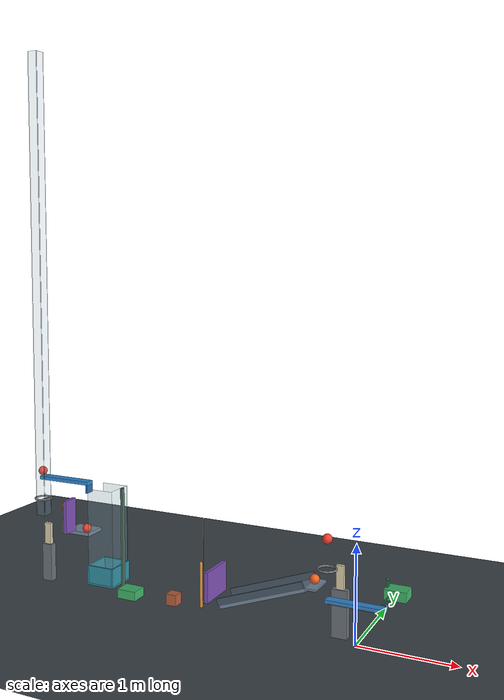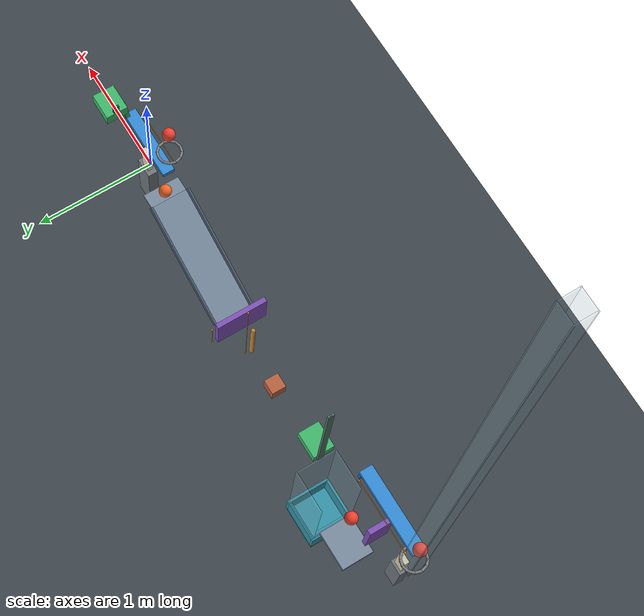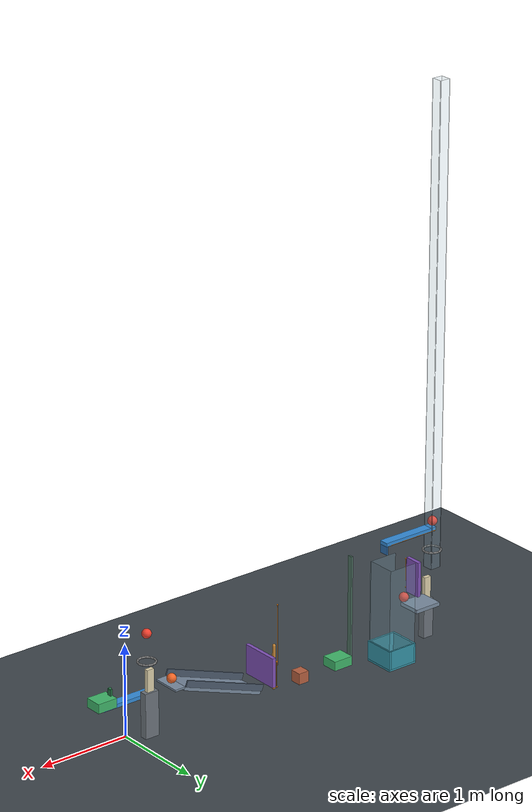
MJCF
<mujoco model="revised_chain_plinth_clearance">
  <compiler angle="degree" autolimits="true"/>
  <option timestep="0.002" gravity="0 0 -9.81" integrator="implicitfast" cone="elliptic" solver="Newton" iterations="100" tolerance="1e-10"/>

  <visual>
    <headlight ambient="0.35 0.35 0.35" diffuse="0.65 0.65 0.65" specular="0.15 0.15 0.15"/>
    <map znear="0.01" zfar="30"/>
  </visual>

  <!-- Passive over-center spring assists; every body initially at rest. -->
  <!-- Contact damping ratio 0.7156 approximates restitution 0.04. -->
  <!-- This revision has not been simulation-verified. -->
  <!-- Primary hinge damping is 0.04; slide damping is 0.20. -->

  <worldbody>
    <light name="scene_light" pos="-1.5 -3 7" dir="0 0.3 -1" diffuse="0.8 0.8 0.8"/>
    <camera name="overview" pos="-1.8 -6 3.8" xyaxes="1 0 0 0 0.48 0.877268"/>
    <geom name="floor" type="plane" pos="0 0 0" size="10 5 0.1" friction="0.72 0.005 0.0001" condim="6" solref="0.004 0.7156" rgba="0.24 0.27 0.30 1"/>

    <!-- Extra rolling resistance arrests ball1 after its intended strike. -->
    <body name="ball1" pos="-0.285 -0.025 1.022020">
      <freejoint name="ball1_free"/>
      <geom name="ball1_sphere" type="sphere" size="0.05" mass="0.20" friction="0.72 0.005 0.005" condim="6" solref="0.004 0.7156" rgba="0.95 0.25 0.18 1"/>
    </body>

    <!-- Ring1 is 0.30 m below ball1's initial center. -->
    <!-- Capsule polygon has a 0.16 m minimum clear diameter. -->
    <body name="ring1" pos="-0.285 -0.025 0.722020">
      <geom name="ring1_segment00" type="capsule" fromto="0.093174856 0 0 0.080691024 0.046587428 0" size="0.01" friction="0.72 0.005 0.0001" solref="0.004 0.7156"/>
      <geom name="ring1_segment01" type="capsule" fromto="0.080691024 0.046587428 0 0.046587428 0.080691024 0" size="0.01" friction="0.72 0.005 0.0001" solref="0.004 0.7156"/>
      <geom name="ring1_segment02" type="capsule" fromto="0.046587428 0.080691024 0 0 0.093174856 0" size="0.01" friction="0.72 0.005 0.0001" solref="0.004 0.7156"/>
      <geom name="ring1_segment03" type="capsule" fromto="0 0.093174856 0 -0.046587428 0.080691024 0" size="0.01" friction="0.72 0.005 0.0001" solref="0.004 0.7156"/>
      <geom name="ring1_segment04" type="capsule" fromto="-0.046587428 0.080691024 0 -0.080691024 0.046587428 0" size="0.01" friction="0.72 0.005 0.0001" solref="0.004 0.7156"/>
      <geom name="ring1_segment05" type="capsule" fromto="-0.080691024 0.046587428 0 -0.093174856 0 0" size="0.01" friction="0.72 0.005 0.0001" solref="0.004 0.7156"/>
      <geom name="ring1_segment06" type="capsule" fromto="-0.093174856 0 0 -0.080691024 -0.046587428 0" size="0.01" friction="0.72 0.005 0.0001" solref="0.004 0.7156"/>
      <geom name="ring1_segment07" type="capsule" fromto="-0.080691024 -0.046587428 0 -0.046587428 -0.080691024 0" size="0.01" friction="0.72 0.005 0.0001" solref="0.004 0.7156"/>
      <geom name="ring1_segment08" type="capsule" fromto="-0.046587428 -0.080691024 0 0 -0.093174856 0" size="0.01" friction="0.72 0.005 0.0001" solref="0.004 0.7156"/>
      <geom name="ring1_segment09" type="capsule" fromto="0 -0.093174856 0 0.046587428 -0.080691024 0" size="0.01" friction="0.72 0.005 0.0001" solref="0.004 0.7156"/>
      <geom name="ring1_segment10" type="capsule" fromto="0.046587428 -0.080691024 0 0.080691024 -0.046587428 0" size="0.01" friction="0.72 0.005 0.0001" solref="0.004 0.7156"/>
      <geom name="ring1_segment11" type="capsule" fromto="0.080691024 -0.046587428 0 0.093174856 0 0" size="0.01" friction="0.72 0.005 0.0001" solref="0.004 0.7156"/>
    </body>

    <!-- Initial ball1 contact center z=0.472020 is 0.25 m below ring1. -->
    <body name="lever1" pos="0 0 0.402020">
      <joint name="lever1_hinge" type="hinge" axis="0 -1 0" damping="0.04" limited="true" range="0 45" solreflimit="0.004 1" solimplimit="0.99 0.999 0.0001"/>
      <geom name="lever1_beam" type="box" size="0.30 0.05 0.02" mass="0.50" contype="2" conaffinity="1" friction="0.72 0.005 0.0001" condim="6" solref="0.004 0.7156" rgba="0.20 0.55 0.85 1"/>
      <geom name="lever1_cam_striker" type="sphere" pos="0.29 0.042 0.03" size="0.014" mass="0" contype="8" conaffinity="16" friction="0.72 0.005 0.0001" condim="3" solref="0.004 0.7156" rgba="0.18 0.40 0.62 1"/>
      <site name="lever1_spring_tip" pos="-0.25 -0.08 0" size="0.006" rgba="1 0.55 0.1 1"/>
    </body>

    <!-- The inclined cam avoids a self-locking underside contact. -->
    <!-- The high striker reaches domino1 after 0.42 m of cart travel. -->
    <body name="cart1" pos="0.37 0.125 0.542020">
      <joint name="cart1_slide" type="slide" axis="-1 0 0" damping="0.20" limited="true" range="0 0.46" solreflimit="0.004 1" solimplimit="0.99 0.999 0.0001"/>
      <geom name="cart1_box" type="box" size="0.11 0.09 0.05" mass="0.50" contype="4" conaffinity="1" friction="0.72 0.005 0.0001" condim="6" solref="0.004 0.7156" rgba="0.25 0.72 0.42 1"/>
      <geom name="cart1_cam" type="box" pos="-0.08 -0.083 -0.042020" quat="0.894427191 0 -0.447213595 0" size="0.065 0.018 0.008" mass="0" contype="16" conaffinity="8" friction="0.72 0.005 0.0001" condim="3" solref="0.004 0.7156" rgba="0.15 0.45 0.27 1"/>
      <geom name="cart1_striker_stem" type="box" pos="-0.095 0 0.0775" size="0.01 0.025 0.0425" mass="0" contype="4" conaffinity="1" friction="0.72 0.005 0.0001" condim="6" solref="0.004 0.7156" rgba="0.15 0.45 0.27 1"/>
      <geom name="cart1_high_striker" type="sphere" pos="-0.095 0 0.12" size="0.015" mass="0" friction="0.72 0.005 0.0001" condim="6" solref="0.004 0.7156" rgba="0.15 0.45 0.27 1"/>
    </body>

    <!-- Plinth top z=0.487020 gives 5 mm clearance below cart1's box. -->
    <body name="domino1_plinth" pos="-0.20 0.125 0.243510">
      <geom name="domino1_plinth_box" type="box" size="0.08 0.04 0.243510" friction="0.72 0.005 0.0001" condim="6" solref="0.004 0.7156" rgba="0.43 0.46 0.49 1"/>
    </body>

    <!-- Bit 128 excludes the cart's low box but allows its high striker. -->
    <body name="domino1" pos="-0.20 0.125 0.607020">
      <freejoint name="domino1_free"/>
      <geom name="domino1_box" type="box" size="0.04 0.02 0.12" mass="0.25" contype="128" conaffinity="1" friction="0.72 0.005 0.0001" condim="6" solref="0.004 0.7156" rgba="0.88 0.83 0.68 1"/>
    </body>

    <!-- Initial domino1-to-ball2 surface gap is 0.18 m. -->
    <body name="ball2" pos="-0.47 0.125 0.542020">
      <freejoint name="ball2_free"/>
      <geom name="ball2_sphere" type="sphere" size="0.05" mass="0.20" friction="0.72 0.005 0.0001" condim="6" solref="0.004 0.7156" rgba="0.95 0.40 0.15 1"/>
    </body>

    <!-- Sloping top: 1.00 m long, 0.30 m wide, inclined 20 degrees. -->
    <!-- Low top endpoint is approximately (-1.459693, 0.125, 0.15). -->
    <body name="ramp1" pos="-0.989846 0.125 0.321010">
      <geom name="ramp1_slope" type="box" pos="0.006840 0 -0.018794" quat="0.984807753 0 -0.173648178 0" size="0.50 0.15 0.02" friction="0.72 0.005 0.0001" condim="6" solref="0.004 0.7156" rgba="0.48 0.55 0.63 1"/>
      <geom name="ramp1_entry_pad" type="box" pos="0.529846 0 0.161010" size="0.06 0.15 0.01" friction="0.72 0.005 0.0001" condim="6" solref="0.004 0.7156" rgba="0.48 0.55 0.63 1"/>
      <geom name="ramp1_rail_north" type="box" pos="-0.011971 0.158 0.032889" quat="0.984807753 0 -0.173648178 0" size="0.50 0.008 0.035" friction="0.72 0.005 0.0001" condim="6" solref="0.004 0.7156" rgba="0.30 0.36 0.43 1"/>
      <geom name="ramp1_rail_south" type="box" pos="-0.011971 -0.158 0.032889" quat="0.984807753 0 -0.173648178 0" size="0.50 0.008 0.035" friction="0.72 0.005 0.0001" condim="6" solref="0.004 0.7156" rgba="0.30 0.36 0.43 1"/>
    </body>

    <!-- Incoming door face is 0.10 m beyond the ramp endpoint. -->
    <body name="door1" pos="-1.579693 0.125 0.33">
      <joint name="door1_hinge" type="hinge" axis="0 1 0" damping="0.04" limited="true" range="0 70" solreflimit="0.004 1" solimplimit="0.99 0.999 0.0001"/>
      <geom name="door1_panel" type="box" size="0.02 0.21 0.16" mass="0.45" friction="0.72 0.005 0.0001" condim="6" solref="0.004 0.7156" rgba="0.50 0.32 0.72 1"/>
      <site name="door1_spring_tip" pos="0 0.25 -0.14" size="0.006" rgba="1 0.55 0.1 1"/>
    </body>

    <body name="pendulum1" pos="-1.747 0.125 0.515">
      <joint name="pendulum1_hinge" type="hinge" axis="0 1 0" damping="0.04" limited="true" range="0 38" solreflimit="0.004 1" solimplimit="0.99 0.999 0.0001"/>
      <geom name="pendulum1_rod" type="capsule" fromto="0 0 -0.018 0 0 -0.482" size="0.018" mass="0.35" friction="0.72 0.005 0.0001" condim="6" solref="0.004 0.7156" rgba="0.78 0.53 0.22 1"/>
      <site name="pendulum1_spring_tip" pos="0 0.055 -0.45" size="0.006" rgba="1 0.55 0.1 1"/>
    </body>

    <!-- Carriage prevents pitching but permits vertical settling onto the floor. -->
    <body name="block1_carriage" pos="-2.083 0.125 0.06">
      <inertial pos="0 0 0" mass="0.001" diaginertia="0.000001 0.000001 0.000001"/>
      <joint name="block1_carriage_slide" type="slide" axis="-1 0 0" damping="0.20"/>
      <joint name="block1_carriage_settle" type="slide" axis="0 0 1" damping="0.20" limited="true" range="-0.003 0.003"/>
    </body>

    <body name="block1" pos="-2.083 0.125 0.06">
      <freejoint name="block1_free"/>
      <geom name="block1_cube" type="box" size="0.06 0.06 0.06" mass="0.35" friction="0.72 0.005 0.0001" condim="6" solref="0.004 0.7156" rgba="0.72 0.38 0.25 1"/>
    </body>

    <!-- Block1 reaches cart2 after sliding 0.35 m. -->
    <!-- The lateral offset keeps cart2 clear of cup1. -->
    <body name="cart2" pos="-2.603 0.085 0.051">
      <joint name="cart2_slide" type="slide" axis="-1 0 0" damping="0.20" limited="true" range="0 0.47" solreflimit="0.004 1" solimplimit="0.99 0.999 0.0001"/>
      <geom name="cart2_box" type="box" size="0.11 0.09 0.05" mass="0.50" friction="0.72 0.005 0.0001" condim="6" solref="0.004 0.7156" rgba="0.25 0.72 0.42 1"/>
      <geom name="cart2_striker_mast" type="box" pos="-0.12 0.04 0.57" size="0.01 0.025 0.57" mass="0" friction="0.72 0.005 0.0001" condim="6" solref="0.004 0.7156" rgba="0.30 0.44 0.38 1"/>
      <geom name="cart2_striker_head" type="sphere" pos="-0.12 0.04 1.135" size="0.01" mass="0" friction="0.72 0.005 0.0001" condim="6" solref="0.004 0.7156" rgba="0.30 0.44 0.38 1"/>
    </body>

    <!-- Working left end is toward +x; ball-carrying right end is toward -x. -->
    <!-- Cart2 reaches the left-end flange after 0.42 m. -->
    <body name="seesaw1" pos="-3.478 0.125 1.20">
      <joint name="seesaw1_hinge" type="hinge" axis="0 1 0" damping="0.04" limited="true" range="0 42" solreflimit="0.004 1" solimplimit="0.99 0.999 0.0001"/>
      <geom name="seesaw1_beam" type="box" size="0.325 0.05 0.02" mass="0.55" friction="0.72 0.005 0.0001" condim="6" solref="0.004 0.7156" rgba="0.20 0.55 0.85 1"/>
      <geom name="seesaw1_trigger_flange" type="box" pos="0.315 0 -0.065" size="0.01 0.05 0.045" mass="0" friction="0.72 0.005 0.0001" condim="6" solref="0.004 0.7156" rgba="0.17 0.43 0.68 1"/>
      <site name="seesaw1_spring_tip" pos="0.28 0.08 0" size="0.006" rgba="1 0.55 0.1 1"/>
    </body>

    <body name="ball3" pos="-3.798 0.125 1.27">
      <freejoint name="ball3_free"/>
      <geom name="ball3_sphere" type="sphere" size="0.05" mass="0.20" contype="32" conaffinity="1" friction="0.72 0.005 0.0001" condim="6" solref="0.004 0.7156" rgba="0.95 0.25 0.18 1"/>
    </body>

    <!-- These guides collide only with ball3. -->
    <!-- Their lower ends terminate at z=0.76, above the domino strike. -->
    <body name="ball3_vertical_guide" pos="-3.798 0.125 3.36">
      <geom name="ball3_vertical_guide_east" type="box" pos="0.056 0 0" size="0.003 0.06 2.60" contype="64" conaffinity="32" friction="0.72 0.005 0.0001" condim="6" solref="0.004 0.7156" rgba="0.60 0.78 0.85 0.18"/>
      <geom name="ball3_vertical_guide_west" type="box" pos="-0.056 0 0" size="0.003 0.06 2.60" contype="64" conaffinity="32" friction="0.72 0.005 0.0001" condim="6" solref="0.004 0.7156" rgba="0.60 0.78 0.85 0.18"/>
      <geom name="ball3_vertical_guide_north" type="box" pos="0 0.056 0" size="0.06 0.003 2.60" contype="64" conaffinity="32" friction="0.72 0.005 0.0001" condim="6" solref="0.004 0.7156" rgba="0.60 0.78 0.85 0.18"/>
      <geom name="ball3_vertical_guide_south" type="box" pos="0 -0.056 0" size="0.06 0.003 2.60" contype="64" conaffinity="32" friction="0.72 0.005 0.0001" condim="6" solref="0.004 0.7156" rgba="0.60 0.78 0.85 0.18"/>
    </body>

    <!-- Ring2 center is 0.32 m below ball3's initial center. -->
    <body name="ring2" pos="-3.798 0.125 0.95">
      <geom name="ring2_segment00" type="capsule" fromto="0.093174856 0 0 0.080691024 0.046587428 0" size="0.01" friction="0.72 0.005 0.0001" solref="0.004 0.7156"/>
      <geom name="ring2_segment01" type="capsule" fromto="0.080691024 0.046587428 0 0.046587428 0.080691024 0" size="0.01" friction="0.72 0.005 0.0001" solref="0.004 0.7156"/>
      <geom name="ring2_segment02" type="capsule" fromto="0.046587428 0.080691024 0 0 0.093174856 0" size="0.01" friction="0.72 0.005 0.0001" solref="0.004 0.7156"/>
      <geom name="ring2_segment03" type="capsule" fromto="0 0.093174856 0 -0.046587428 0.080691024 0" size="0.01" friction="0.72 0.005 0.0001" solref="0.004 0.7156"/>
      <geom name="ring2_segment04" type="capsule" fromto="-0.046587428 0.080691024 0 -0.080691024 0.046587428 0" size="0.01" friction="0.72 0.005 0.0001" solref="0.004 0.7156"/>
      <geom name="ring2_segment05" type="capsule" fromto="-0.080691024 0.046587428 0 -0.093174856 0 0" size="0.01" friction="0.72 0.005 0.0001" solref="0.004 0.7156"/>
      <geom name="ring2_segment06" type="capsule" fromto="-0.093174856 0 0 -0.080691024 -0.046587428 0" size="0.01" friction="0.72 0.005 0.0001" solref="0.004 0.7156"/>
      <geom name="ring2_segment07" type="capsule" fromto="-0.080691024 -0.046587428 0 -0.046587428 -0.080691024 0" size="0.01" friction="0.72 0.005 0.0001" solref="0.004 0.7156"/>
      <geom name="ring2_segment08" type="capsule" fromto="-0.046587428 -0.080691024 0 0 -0.093174856 0" size="0.01" friction="0.72 0.005 0.0001" solref="0.004 0.7156"/>
      <geom name="ring2_segment09" type="capsule" fromto="0 -0.093174856 0 0.046587428 -0.080691024 0" size="0.01" friction="0.72 0.005 0.0001" solref="0.004 0.7156"/>
      <geom name="ring2_segment10" type="capsule" fromto="0.046587428 -0.080691024 0 0.080691024 -0.046587428 0" size="0.01" friction="0.72 0.005 0.0001" solref="0.004 0.7156"/>
      <geom name="ring2_segment11" type="capsule" fromto="0.080691024 -0.046587428 0 0.093174856 0 0" size="0.01" friction="0.72 0.005 0.0001" solref="0.004 0.7156"/>
    </body>

    <!-- Ball3 strikes outside the upper-left corner to push domino2 rightward. -->
    <!-- At first geometric contact its center is z=0.71, 0.24 m below ring2. -->
    <body name="domino2_plinth" pos="-3.733 0.125 0.213349365">
      <geom name="domino2_plinth_box" type="box" size="0.06 0.04 0.213349365" friction="0.72 0.005 0.0001" condim="6" solref="0.004 0.7156" rgba="0.43 0.46 0.49 1"/>
    </body>

    <body name="domino2" pos="-3.733 0.125 0.546698730">
      <freejoint name="domino2_free"/>
      <geom name="domino2_box" type="box" size="0.04 0.02 0.12" mass="0.25" friction="0.72 0.005 0.0001" condim="6" solref="0.004 0.7156" rgba="0.88 0.83 0.68 1"/>
    </body>

    <!-- Initial domino2-to-flap1 surface gap is 0.18 m. -->
    <body name="flap1" pos="-3.493 0.20 0.76">
      <joint name="flap1_hinge" type="hinge" axis="0 -1 0" damping="0.04" limited="true" range="0 60" solreflimit="0.004 1" solimplimit="0.99 0.999 0.0001"/>
      <geom name="flap1_panel" type="box" size="0.02 0.09 0.19" mass="0.28" friction="0.72 0.005 0.0001" condim="6" solref="0.004 0.7156" rgba="0.50 0.32 0.72 1"/>
      <site name="flap1_spring_tip" pos="0 -0.12 -0.16" size="0.006" rgba="1 0.55 0.1 1"/>
    </body>

    <!-- Shelf top z=0.57 is 0.55 m above the cup's inner bottom z=0.02. -->
    <body name="shelf1" pos="-3.424 0.385 0.55">
      <geom name="shelf1_box" type="box" size="0.15 0.125 0.02" friction="0.72 0.005 0.0001" condim="6" solref="0.004 0.7156" rgba="0.48 0.55 0.63 1"/>
    </body>

    <body name="ball4" pos="-3.304 0.275 0.62">
      <freejoint name="ball4_free"/>
      <geom name="ball4_sphere" type="sphere" size="0.05" mass="0.20" friction="0.72 0.005 0.0001" condim="6" solref="0.004 0.7156" rgba="0.95 0.25 0.18 1"/>
    </body>

    <!-- Separate chute is open toward -x at shelf height. -->
    <body name="catch_chute" pos="-3.079 0.36 0">
      <geom name="catch_chute_east" type="box" pos="0.155 0 0.66" size="0.005 0.15 0.44" friction="0.72 0.005 0.0001" condim="6" solref="0.004 0.7156" rgba="0.55 0.72 0.78 0.28"/>
      <geom name="catch_chute_north" type="box" pos="0 0.155 0.66" size="0.16 0.005 0.44" friction="0.72 0.005 0.0001" condim="6" solref="0.004 0.7156" rgba="0.55 0.72 0.78 0.28"/>
      <geom name="catch_chute_south" type="box" pos="0 -0.155 0.66" size="0.16 0.005 0.44" friction="0.72 0.005 0.0001" condim="6" solref="0.004 0.7156" rgba="0.55 0.72 0.78 0.28"/>
      <geom name="catch_chute_west_lower" type="box" pos="-0.155 0 0.31" size="0.005 0.15 0.09" friction="0.72 0.005 0.0001" condim="6" solref="0.004 0.7156" rgba="0.55 0.72 0.78 0.28"/>
    </body>

    <!-- Inner footprint 0.30 by 0.30 m; walls 0.20 m high and 0.02 m thick. -->
    <body name="cup1" pos="-3.079 0.36 0">
      <geom name="cup1_bottom" type="box" pos="0 0 0.01" size="0.17 0.17 0.01" friction="0.72 0.005 0.0001" condim="6" solref="0.004 0.7156" rgba="0.20 0.58 0.66 1"/>
      <geom name="cup1_wall_west" type="box" pos="-0.16 0 0.12" size="0.01 0.17 0.10" friction="0.72 0.005 0.0001" condim="6" solref="0.004 0.7156" rgba="0.20 0.58 0.66 1"/>
      <geom name="cup1_wall_east" type="box" pos="0.16 0 0.12" size="0.01 0.17 0.10" friction="0.72 0.005 0.0001" condim="6" solref="0.004 0.7156" rgba="0.20 0.58 0.66 1"/>
      <geom name="cup1_wall_north" type="box" pos="0 0.16 0.12" size="0.15 0.01 0.10" friction="0.72 0.005 0.0001" condim="6" solref="0.004 0.7156" rgba="0.20 0.58 0.66 1"/>
      <geom name="cup1_wall_south" type="box" pos="0 -0.16 0.12" size="0.15 0.01 0.10" friction="0.72 0.005 0.0001" condim="6" solref="0.004 0.7156" rgba="0.20 0.58 0.66 1"/>
    </body>

    <body name="spring_frame" pos="0 0 0">
      <site name="lever1_spring_anchor" pos="0.25 -0.08 0.402020" size="0.008" rgba="1 0.55 0.1 1"/>
      <site name="door1_spring_anchor" pos="-1.579693 0.375 0.47" size="0.008" rgba="1 0.55 0.1 1"/>
      <site name="pendulum1_spring_anchor" pos="-1.747 0.18 0.965" size="0.008" rgba="1 0.55 0.1 1"/>
      <site name="seesaw1_spring_anchor" pos="-3.758 0.205 1.20" size="0.008" rgba="1 0.55 0.1 1"/>
      <site name="flap1_spring_anchor" pos="-3.493 0.08 0.92" size="0.008" rgba="1 0.55 0.1 1"/>
    </body>
  </worldbody>

  <contact>
    <exclude name="flap1_shelf1_clearance" body1="flap1" body2="shelf1"/>
  </contact>

  <tendon>
    <spatial name="lever1_overcenter_spring" stiffness="250" damping="0" springlength="0.10" width="0.002" rgba="1 0.55 0.1 1">
      <site site="lever1_spring_anchor"/>
      <site site="lever1_spring_tip"/>
    </spatial>
    <spatial name="door1_overcenter_spring" stiffness="500" damping="0" springlength="0.08" width="0.002" rgba="1 0.55 0.1 1">
      <site site="door1_spring_anchor"/>
      <site site="door1_spring_tip"/>
    </spatial>
    <spatial name="pendulum1_overcenter_spring" stiffness="1600" damping="0" springlength="0.50" width="0.002" rgba="1 0.55 0.1 1">
      <site site="pendulum1_spring_anchor"/>
      <site site="pendulum1_spring_tip"/>
    </spatial>
    <spatial name="seesaw1_overcenter_spring" stiffness="450" damping="0" springlength="0.06" width="0.002" rgba="1 0.55 0.1 1">
      <site site="seesaw1_spring_anchor"/>
      <site site="seesaw1_spring_tip"/>
    </spatial>
    <spatial name="flap1_overcenter_spring" stiffness="40" damping="0" springlength="0.08" width="0.002" rgba="1 0.55 0.1 1">
      <site site="flap1_spring_anchor"/>
      <site site="flap1_spring_tip"/>
    </spatial>
  </tendon>

  <equality>
    <weld name="block1_linear_guide" body1="block1" body2="block1_carriage" solref="0.004 1" solimp="0.99 0.999 0.0001"/>
  </equality>

  <!-- Default keyframe pose is the initial model pose; default velocities are zero. -->
  <keyframe>
    <key name="start" time="0"/>
  </keyframe>
</mujoco>
